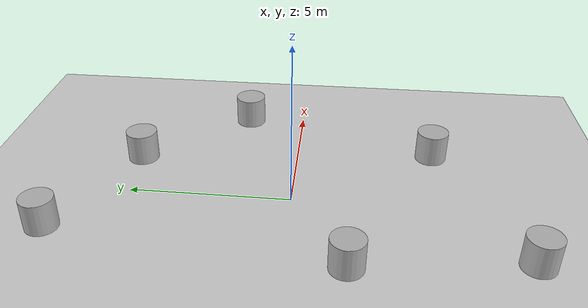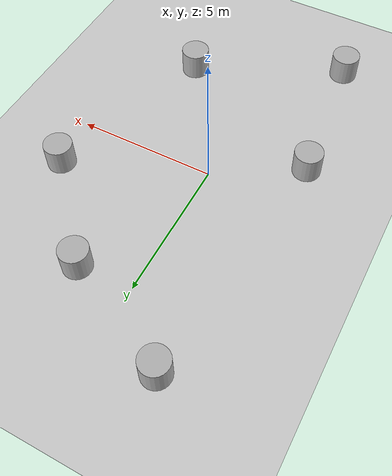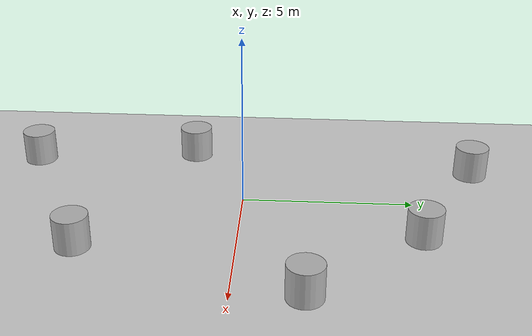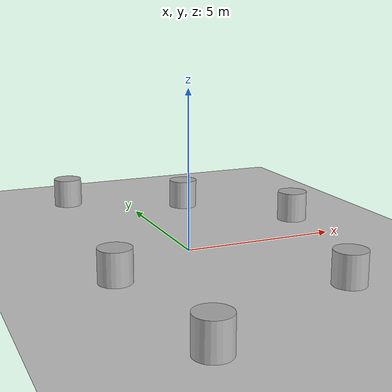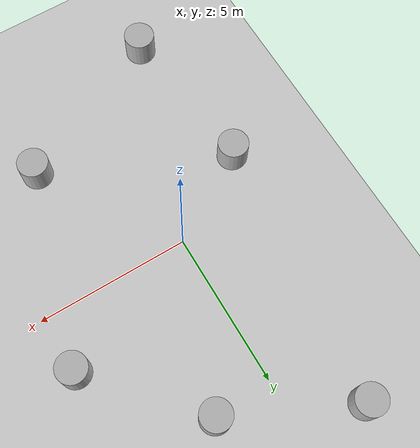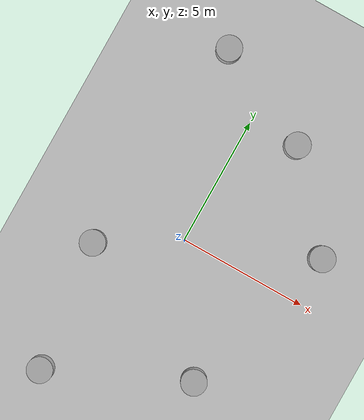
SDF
<sdf version="1.10">
 <world name="empty">
  <physics name="1ms" type="ignored">
   <max_step_size>0.001</max_step_size>
   <real_time_factor>1</real_time_factor>
   <real_time_update_rate>1000</real_time_update_rate>
  </physics>
  <plugin name="gz::sim::systems::Physics" filename="gz-sim-physics-system"/>
  <plugin name="gz::sim::systems::UserCommands" filename="gz-sim-user-commands-system"/>
  <plugin name="gz::sim::systems::SceneBroadcaster" filename="gz-sim-scene-broadcaster-system"/>
  <plugin name="gz::sim::systems::Contact" filename="gz-sim-contact-system"/>
  <gravity>0 0 -9.8000000000000007</gravity>
  <magnetic_field>5.5644999999999998e-06 2.2875799999999999e-05 -4.2388400000000002e-05</magnetic_field>
  <atmosphere type="adiabatic"/>
  <scene>
   <ambient>0.400000006 0.400000006 0.400000006 1</ambient>
   <background>0.699999988 0.699999988 0.699999988 1</background>
   <shadows>true</shadows>
  </scene>
  <model name="ground_plane">
   <static>true</static>
   <link name="link">
    <collision name="collision">
     <geometry><plane><normal>0 0 1</normal><size>100 100</size></plane></geometry>
    </collision>
    <visual name="visual">
     <geometry><plane><normal>0 0 1</normal><size>100 100</size></plane></geometry>
     <material>
      <ambient>0.800000012 0.800000012 0.800000012 1</ambient>
      <diffuse>0.800000012 0.800000012 0.800000012 1</diffuse>
      <specular>0.800000012 0.800000012 0.800000012 1</specular>
     </material>
    </visual>
    <inertial>
     <mass>1</mass>
     <inertia><ixx>1</ixx><ixy>0</ixy><ixz>0</ixz><iyy>1</iyy><iyz>0</iyz><izz>1</izz></inertia>
    </inertial>
   </link>
  </model>
  <model name="cylinder_0">
   <pose>-2.0244639179533475 6.9869860203094731 0.5 0 0 0</pose>
   <link name="cylinder_link">
    <inertial>
     <inertia>
      <ixx>0.14580000000000001</ixx>
      <ixy>0</ixy>
      <ixz>0</ixz>
      <iyy>0.14580000000000001</iyy>
      <iyz>0</iyz>
      <izz>0.125</izz>
     </inertia>
     <mass>1</mass>
    </inertial>
    <collision name="cylinder_collision">
     <geometry><cylinder><radius>0.5</radius><length>1</length></cylinder></geometry>
    </collision>
    <visual name="cylinder_visual">
     <geometry><cylinder><radius>0.5</radius><length>1</length></cylinder></geometry>
     <material>
      <ambient>0.300000012 0.300000012 0.300000012 1</ambient>
      <diffuse>0.699999988 0.699999988 0.699999988 1</diffuse>
      <specular>1 1 1 1</specular>
     </material>
    </visual>
   </link>
   <static>false</static>
  </model>
  <model name="cylinder_1">
   <pose>1.9294038934136348 5.1090226372546725 0.5 0 0 0</pose>
   <link name="cylinder_link">
    <inertial>
     <inertia>
      <ixx>0.14580000000000001</ixx>
      <ixy>0</ixy>
      <ixz>0</ixz>
      <iyy>0.14580000000000001</iyy>
      <iyz>0</iyz>
      <izz>0.125</izz>
     </inertia>
     <mass>1</mass>
    </inertial>
    <collision name="cylinder_collision">
     <geometry><cylinder><radius>0.5</radius><length>1</length></cylinder></geometry>
    </collision>
    <visual name="cylinder_visual">
     <geometry><cylinder><radius>0.5</radius><length>1</length></cylinder></geometry>
     <material>
      <ambient>0.300000012 0.300000012 0.300000012 1</ambient>
      <diffuse>0.699999988 0.699999988 0.699999988 1</diffuse>
      <specular>1 1 1 1</specular>
     </material>
    </visual>
   </link>
   <static>false</static>
  </model>
  <model name="cylinder_2">
   <pose>-2.9127920480699254 -1.7360721196126547 0.5 0 0 0</pose>
   <link name="cylinder_link">
    <inertial>
     <inertia>
      <ixx>0.14580000000000001</ixx>
      <ixy>0</ixy>
      <ixz>0</ixz>
      <iyy>0.14580000000000001</iyy>
      <iyz>0</iyz>
      <izz>0.125</izz>
     </inertia>
     <mass>1</mass>
    </inertial>
    <collision name="cylinder_collision">
     <geometry><cylinder><radius>0.5</radius><length>1</length></cylinder></geometry>
    </collision>
    <visual name="cylinder_visual">
     <geometry><cylinder><radius>0.5</radius><length>1</length></cylinder></geometry>
     <material>
      <ambient>0.300000012 0.300000012 0.300000012 1</ambient>
      <diffuse>0.699999988 0.699999988 0.699999988 1</diffuse>
      <specular>1 1 1 1</specular>
     </material>
    </visual>
   </link>
   <static>false</static>
  </model>
  <model name="cylinder_3">
   <pose>4.7808098793029785 1.8919806480407715 0.5 0 0 0</pose>
   <link name="cylinder_link">
    <inertial>
     <inertia>
      <ixx>0.14580000000000001</ixx>
      <ixy>0</ixy>
      <ixz>0</ixz>
      <iyy>0.14580000000000001</iyy>
      <iyz>0</iyz>
      <izz>0.125</izz>
     </inertia>
     <mass>1</mass>
    </inertial>
    <collision name="cylinder_collision">
     <geometry><cylinder><radius>0.5</radius><length>1</length></cylinder></geometry>
    </collision>
    <visual name="cylinder_visual">
     <geometry><cylinder><radius>0.5</radius><length>1</length></cylinder></geometry>
     <material>
      <ambient>0.300000012 0.300000012 0.300000012 1</ambient>
      <diffuse>0.699999988 0.699999988 0.699999988 1</diffuse>
      <specular>1 1 1 1</specular>
     </material>
    </visual>
   </link>
   <static>false</static>
  </model>
  <model name="cylinder_4">
   <pose>2.8730013743653928 -4.4023790888097611 0.5 0 0 0</pose>
   <link name="cylinder_link">
    <inertial>
     <inertia>
      <ixx>0.14580000000000001</ixx>
      <ixy>0</ixy>
      <ixz>0</ixz>
      <iyy>0.14580000000000001</iyy>
      <iyz>0</iyz>
      <izz>0.125</izz>
     </inertia>
     <mass>1</mass>
    </inertial>
    <collision name="cylinder_collision">
     <geometry><cylinder><radius>0.5</radius><length>1</length></cylinder></geometry>
    </collision>
    <visual name="cylinder_visual">
     <geometry><cylinder><radius>0.5</radius><length>1</length></cylinder></geometry>
     <material>
      <ambient>0.300000012 0.300000012 0.300000012 1</ambient>
      <diffuse>0.699999988 0.699999988 0.699999988 1</diffuse>
      <specular>1 1 1 1</specular>
     </material>
    </visual>
   </link>
   <static>false</static>
  </model>
  <model name="cylinder_5">
   <pose>-2.3132159668304038 -6.7822178944803557 0.5 0 0 0</pose>
   <link name="cylinder_link">
    <inertial>
     <inertia>
      <ixx>0.14580000000000001</ixx>
      <ixy>0</ixy>
      <ixz>0</ixz>
      <iyy>0.14580000000000001</iyy>
      <iyz>0</iyz>
      <izz>0.125</izz>
     </inertia>
     <mass>1</mass>
    </inertial>
    <collision name="cylinder_collision">
     <geometry><cylinder><radius>0.5</radius><length>1</length></cylinder></geometry>
    </collision>
    <visual name="cylinder_visual">
     <geometry><cylinder><radius>0.5</radius><length>1</length></cylinder></geometry>
     <material>
      <ambient>0.300000012 0.300000012 0.300000012 1</ambient>
      <diffuse>0.699999988 0.699999988 0.699999988 1</diffuse>
      <specular>1 1 1 1</specular>
     </material>
    </visual>
   </link>
   <static>false</static>
  </model>
  <light name="sun" type="directional">
   <pose>0 0 10 0 0 0</pose>
   <intensity>1</intensity>
   <direction>-0.5 0.10000000000000001 -0.90000000000000002</direction>
   <diffuse>0.800000012 0.800000012 0.800000012 1</diffuse>
   <specular>0.200000003 0.200000003 0.200000003 1</specular>
   <attenuation>
    <range>1000</range>
    <linear>0.01</linear>
    <constant>0.90000000000000002</constant>
    <quadratic>0.001</quadratic>
   </attenuation>
   <spot><inner_angle>0</inner_angle><outer_angle>0</outer_angle><falloff>0</falloff></spot>
  </light>
 </world>
</sdf>
